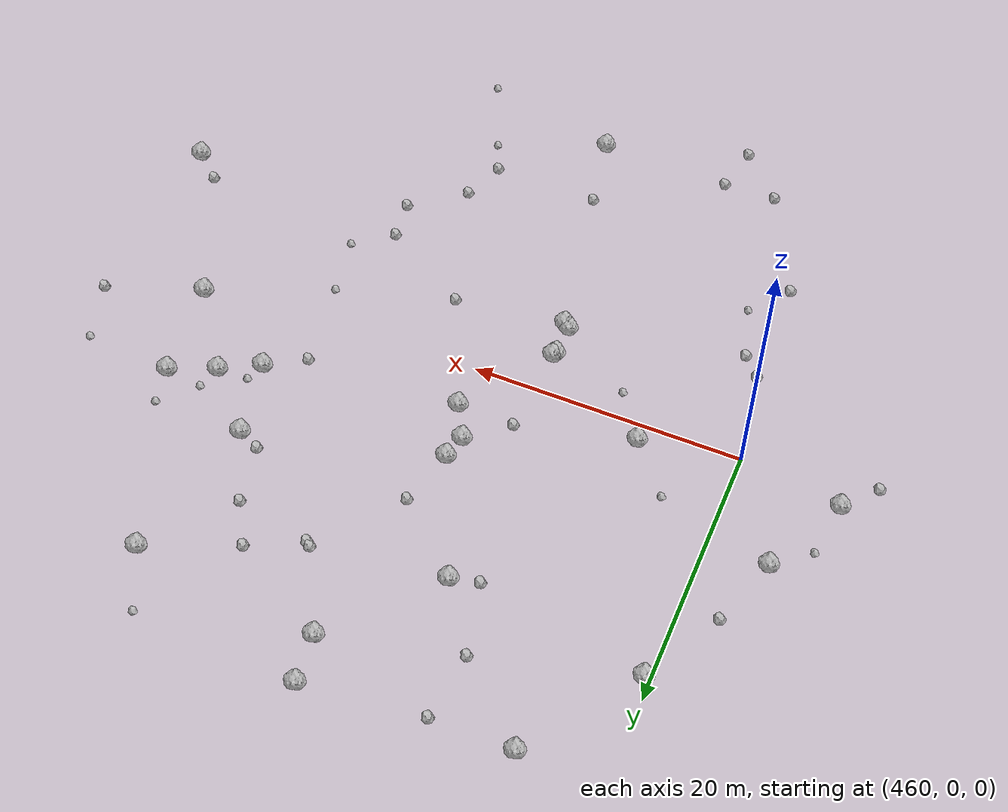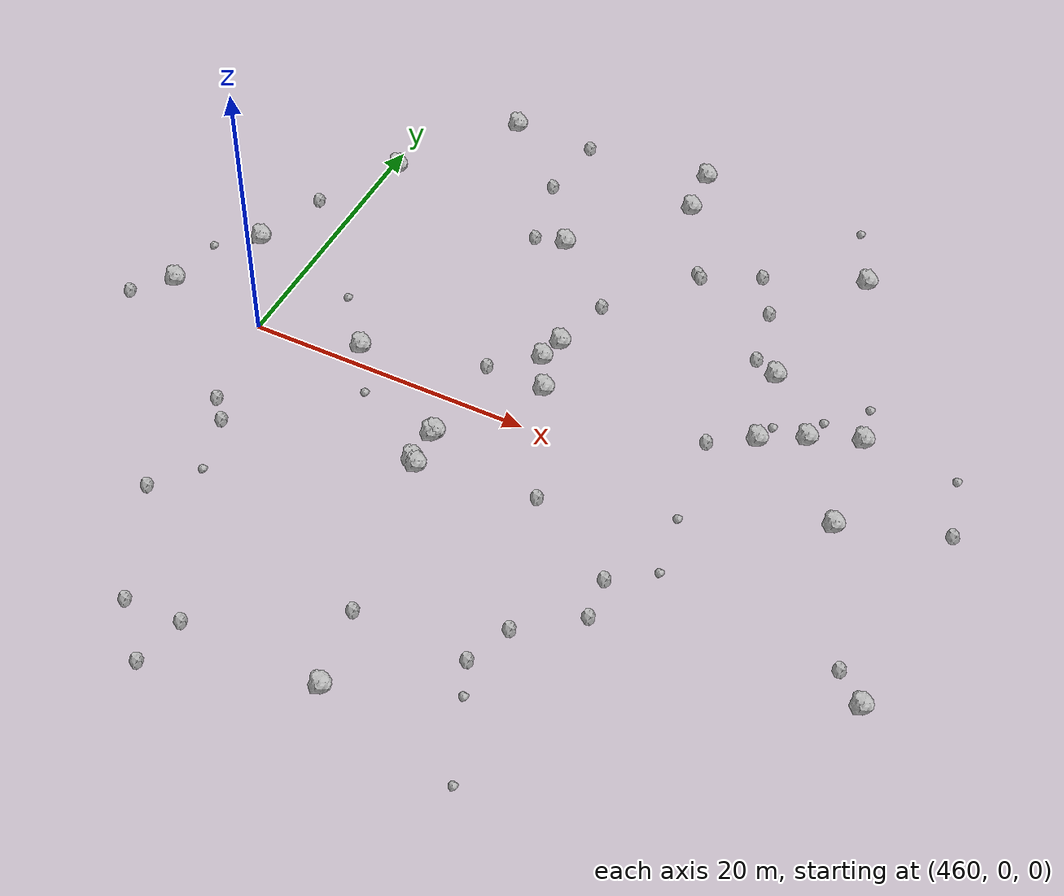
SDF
<sdf version="1.6">
 <world name="default">
  <include><uri>model://sun</uri></include>
  <model name="rock1_12_4">
   <include><uri>model://rock1</uri><pose>478.4986414035714 6.0012742659048115 0.5 0 0 0</pose></include>
  </model>
  <model name="rock1_12_5">
   <include><uri>model://rock1</uri><pose>494.14957455557294 5.772871686428623 0.5 0 0 0</pose></include>
  </model>
  <model name="rock1_12_6">
   <include><uri>model://rock1</uri><pose>495.2070908610871 22.544161742463736 0.5 0 0 0</pose></include>
  </model>
  <model name="rock1_12_7">
   <include><uri>model://rock1</uri><pose>500.3146129590781 8.734771257313632 0.5 0 0 0</pose></include>
  </model>
  <model name="rock1_12_8">
   <include><uri>model://rock1</uri><pose>501.21710623657964 1.3012042276463909 0.5 0 0 0</pose></include>
  </model>
  <model name="rock1_12_9">
   <include><uri>model://rock1</uri><pose>466.13911061768056 26.442307740368854 0.5 0 0 0</pose></include>
  </model>
  <model name="rock1_12_10">
   <include><uri>model://rock1</uri><pose>481.31064227664905 23.982564131040704 0.5 0 0 0</pose></include>
  </model>
  <model name="rock1_12_11">
   <include><uri>model://rock1</uri><pose>479.8759540171378 3.4851701491199876 0.5 0 0 0</pose></include>
  </model>
  <model name="rock1_12_12">
   <include><uri>model://rock1</uri><pose>474.90029108728976 16.699811537579393 0.5 0 0 0</pose></include>
  </model>
  <model name="rock1_12_13">
   <include><uri>model://rock1</uri><pose>480.92213485099546 27.542060263651464 0.5 0 0 0</pose></include>
  </model>
  <model name="rock1_12_14">
   <include><uri>model://rock1</uri><pose>475.3272324005366 -3.170931473134548 0.5 0 0 0</pose></include>
  </model>
  <model name="rock1_12_15">
   <include><uri>model://rock1</uri><pose>455.6348973812468 7.4387792503369 0.5 0 0 0</pose></include>
  </model>
  <model name="rock1_12_16">
   <include><uri>model://rock1</uri><pose>493.01737234420773 11.522817661726705 0.5 0 0 0</pose></include>
  </model>
  <model name="rock1_12_17">
   <include><uri>model://rock1</uri><pose>475.1952098327514 -3.4055877842758946 0.5 0 0 0</pose></include>
  </model>
  <model name="rock1_12_18">
   <include><uri>model://rock1</uri><pose>478.93401833029066 7.814249103731385 0.5 0 0 0</pose></include>
  </model>
  <model name="rock1_12_19">
   <include><uri>model://rock1</uri><pose>475.16972586594017 -5.865435648601462 0.5 0 0 0</pose></include>
  </model>
  <model name="rock1_12_20">
   <include><uri>model://rock1</uri><pose>452.55441788962855 1.1618482096787126 0.5 0 0 0</pose></include>
  </model>
  <model name="rock1_12_21">
   <include><uri>model://rock1</uri><pose>478.9710594015512 -23.770225668892905 0.5 0 0 0</pose></include>
  </model>
  <model name="rock1_12_22">
   <include><uri>model://rock1</uri><pose>475.59611411605425 -6.178674844940975 0.5 0 0 0</pose></include>
  </model>
  <model name="rock1_12_23">
   <include><uri>model://rock1</uri><pose>496.97155749492674 7.324955001931038 0.5 0 0 0</pose></include>
  </model>
  <model name="rock1_12_24">
   <include><uri>model://rock1</uri><pose>507.7505962546903 -10.70752430420378 0.5 0 0 0</pose></include>
  </model>
  <model name="rock1_12_25">
   <include><uri>model://rock1</uri><pose>467.1803548121679 1.3855836087279378 0.5 0 0 0</pose></include>
  </model>
  <model name="rock1_12_26">
   <include><uri>model://rock1</uri><pose>460.473527816242 18.424216772977772 0.5 0 0 0</pose></include>
  </model>
  <model name="rock2_12_0">
   <include><uri>model://rock2</uri><pose>461.17223200741284 -7.014819712104149 0.3 0 0 0</pose></include>
  </model>
  <model name="rock2_12_1">
   <include><uri>model://rock2</uri><pose>479.9683741127681 12.10668602692239 0.3 0 0 0</pose></include>
  </model>
  <model name="rock2_12_2">
   <include><uri>model://rock2</uri><pose>477.8887596346696 -18.110108737969874 0.3 0 0 0</pose></include>
  </model>
  <model name="rock2_12_3">
   <include><uri>model://rock2</uri><pose>450.44489126314704 -1.1962135364235706 0.3 0 0 0</pose></include>
  </model>
  <model name="rock2_12_4">
   <include><uri>model://rock2</uri><pose>461.3079747191332 -15.43696972457154 0.3 0 0 0</pose></include>
  </model>
  <model name="rock2_12_5">
   <include><uri>model://rock2</uri><pose>471.5245955151056 21.530535899706642 0.3 0 0 0</pose></include>
  </model>
  <model name="rock2_12_6">
   <include><uri>model://rock2</uri><pose>491.3348238937363 4.031835706570234 0.3 0 0 0</pose></include>
  </model>
  <model name="rock2_12_7">
   <include><uri>model://rock2</uri><pose>490.7578669344669 -12.071119792418095 0.3 0 0 0</pose></include>
  </model>
  <model name="rock2_12_8">
   <include><uri>model://rock2</uri><pose>483.73668502508065 -5.099391866080129 0.3 0 0 0</pose></include>
  </model>
  <model name="rock2_12_9">
   <include><uri>model://rock2</uri><pose>490.363054898974 -9.069318962320462 0.3 0 0 0</pose></include>
  </model>
  <model name="rock2_12_10">
   <include><uri>model://rock2</uri><pose>505.633448116741 -8.833708007419357 0.3 0 0 0</pose></include>
  </model>
  <model name="rock2_12_11">
   <include><uri>model://rock2</uri><pose>475.5970554180801 3.5968462935855285 0.3 0 0 0</pose></include>
  </model>
  <model name="rock2_12_12">
   <include><uri>model://rock2</uri><pose>468.39234089885963 -27.168310827739035 0.3 0 0 0</pose></include>
  </model>
  <model name="rock2_12_13">
   <include><uri>model://rock2</uri><pose>490.40740601343975 16.676839338068973 0.3 0 0 0</pose></include>
  </model>
  <model name="rock2_12_14">
   <include><uri>model://rock2</uri><pose>485.7722192665439 -18.227724398430503 0.3 0 0 0</pose></include>
  </model>
  <model name="rock2_12_15">
   <include><uri>model://rock2</uri><pose>472.7959417477864 16.193162929975735 0.3 0 0 0</pose></include>
  </model>
  <model name="rock2_12_16">
   <include><uri>model://rock2</uri><pose>469.1057670146525 -23.524359683524704 0.3 0 0 0</pose></include>
  </model>
  <model name="rock2_12_17">
   <include><uri>model://rock2</uri><pose>484.45630720071125 18.064247941856365 0.3 0 0 0</pose></include>
  </model>
  <model name="rock2_12_18">
   <include><uri>model://rock2</uri><pose>472.06877711484185 26.507306134917386 0.3 0 0 0</pose></include>
  </model>
  <model name="rock2_12_19">
   <include><uri>model://rock2</uri><pose>488.6050520189981 19.75849562469333 0.3 0 0 0</pose></include>
  </model>
  <model name="rock2_12_20">
   <include><uri>model://rock2</uri><pose>486.9465823504977 -15.045290427182085 0.3 0 0 0</pose></include>
  </model>
  <model name="rock2_12_21">
   <include><uri>model://rock2</uri><pose>508.1364101801636 3.8353762474424116 0.3 0 0 0</pose></include>
  </model>
  <model name="rock2_12_22">
   <include><uri>model://rock2</uri><pose>484.79928328188487 17.79537132012598 0.3 0 0 0</pose></include>
  </model>
  <model name="rock2_12_23">
   <include><uri>model://rock2</uri><pose>491.31253944586143 12.326279786080704 0.3 0 0 0</pose></include>
  </model>
  <model name="rock2_12_24">
   <include><uri>model://rock2</uri><pose>465.1763872332622 -23.63587221017506 0.3 0 0 0</pose></include>
  </model>
  <model name="rock2_12_25">
   <include><uri>model://rock2</uri><pose>462.4739769678867 -8.513898715572338 0.3 0 0 0</pose></include>
  </model>
  <model name="rock2_12_26">
   <include><uri>model://rock2</uri><pose>457.322224757295 12.62604794586484 0.3 0 0 0</pose></include>
  </model>
  <model name="rock3_12_0">
   <include><uri>model://rock3</uri><pose>494.5970284875067 7.196471895099258 0.2 0 0 0</pose></include>
  </model>
  <model name="rock3_12_1">
   <include><uri>model://rock3</uri><pose>453.03993432255584 5.2925732408910875 0.2 0 0 0</pose></include>
  </model>
  <model name="rock3_12_2">
   <include><uri>model://rock3</uri><pose>455.2168184922073 7.087923897975365 0.2 0 0 0</pose></include>
  </model>
  <model name="rock3_12_3">
   <include><uri>model://rock3</uri><pose>506.8417255674016 8.217052744852232 0.2 0 0 0</pose></include>
  </model>
  <model name="rock3_12_4">
   <include><uri>model://rock3</uri><pose>497.4157218373242 9.061527871367304 0.2 0 0 0</pose></include>
  </model>
  <model name="rock3_12_5">
   <include><uri>model://rock3</uri><pose>489.130089871109 -26.278815452756483 0.2 0 0 0</pose></include>
  </model>
  <model name="rock3_12_6">
   <include><uri>model://rock3</uri><pose>493.09597177892647 -7.034198620221975 0.2 0 0 0</pose></include>
  </model>
  <model name="rock3_12_7">
   <include><uri>model://rock3</uri><pose>499.70158152187093 11.482283760515159 0.2 0 0 0</pose></include>
  </model>
  <model name="rock3_12_8">
   <include><uri>model://rock3</uri><pose>492.9958982639872 26.958968282294776 0.2 0 0 0</pose></include>
  </model>
  <model name="rock3_12_9">
   <include><uri>model://rock3</uri><pose>492.30213715710556 -2.6226834941500883 0.2 0 0 0</pose></include>
  </model>
  <model name="rock3_12_10">
   <include><uri>model://rock3</uri><pose>486.75923016111904 -20.596058226514728 0.2 0 0 0</pose></include>
  </model>
  <model name="rock3_12_11">
   <include><uri>model://rock3</uri><pose>464.01843852757486 5.079513225367606 0.2 0 0 0</pose></include>
  </model>
  <model name="rock3_12_12">
   <include><uri>model://rock3</uri><pose>463.6072515100055 -12.614980465659333 0.2 0 0 0</pose></include>
  </model>
  <model name="rock3_12_13">
   <include><uri>model://rock3</uri><pose>469.48229655260536 -2.12331426194757 0.2 0 0 0</pose></include>
  </model>
 </world>
</sdf>
